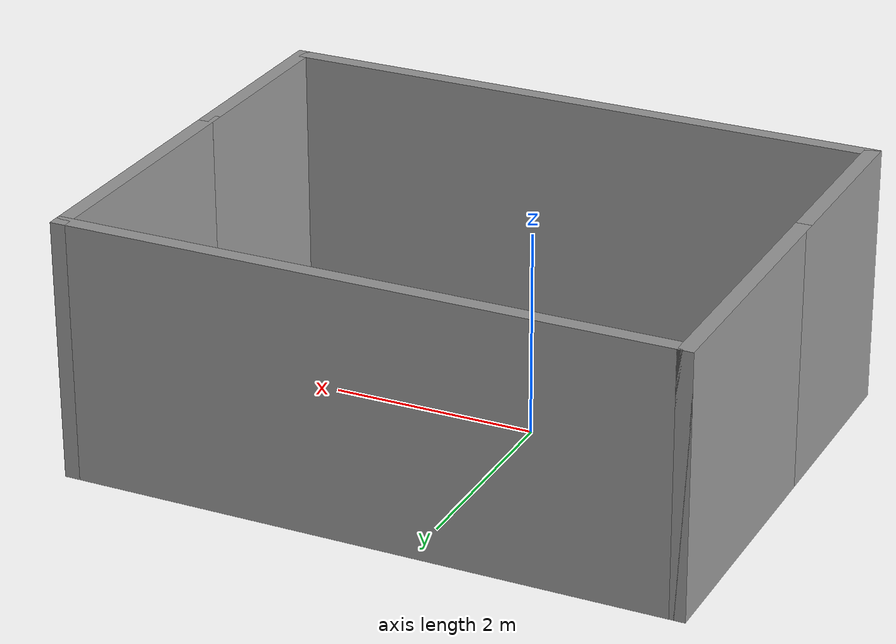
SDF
<?xml version='1.0'?>
<sdf version='1.7'>
  <model name='cube_test'>
    <pose>0.441066 0.255392 0 0 -0 0</pose>
    <link name='Wall_10'>
      <collision name='Wall_10_Collision'>
        <geometry>
          <box>
            <size>6 0.15 2.5</size>
          </box>
        </geometry>
        <pose>0 0 1.25 0 -0 0</pose>
      </collision>
      <visual name='Wall_10_Visual'>
        <pose>0 0 1.25 0 -0 0</pose>
        <geometry>
          <box>
            <size>6 0.15 2.5</size>
          </box>
        </geometry>
        <material>
          <script>
            <uri>file://media/materials/scripts/gazebo.material</uri>
            <name>Gazebo/Grey</name>
          </script>
          <ambient>1 1 1 1</ambient>
        </material>
        <meta>
          <layer>0</layer>
        </meta>
      </visual>
      <pose>0 2.225 0 0 -0 0</pose>
    </link>
    <link name='Wall_3'>
      <collision name='Wall_3_Collision'>
        <geometry>
          <box>
            <size>2 0.15 2.5</size>
          </box>
        </geometry>
        <pose>0 0 1.25 0 -0 0</pose>
      </collision>
      <visual name='Wall_3_Visual'>
        <pose>0 0 1.25 0 -0 0</pose>
        <geometry>
          <box>
            <size>2 0.15 2.5</size>
          </box>
        </geometry>
        <material>
          <script>
            <uri>file://media/materials/scripts/gazebo.material</uri>
            <name>Gazebo/Grey</name>
          </script>
          <ambient>1 1 1 1</ambient>
        </material>
        <meta>
          <layer>0</layer>
        </meta>
      </visual>
      <pose>-2.925 -1.3 0 0 -0 -1.5708</pose>
    </link>
    <link name='Wall_4'>
      <collision name='Wall_4_Collision'>
        <geometry>
          <box>
            <size>6 0.15 2.5</size>
          </box>
        </geometry>
        <pose>0 0 1.25 0 -0 0</pose>
      </collision>
      <visual name='Wall_4_Visual'>
        <pose>0 0 1.25 0 -0 0</pose>
        <geometry>
          <box>
            <size>6 0.15 2.5</size>
          </box>
        </geometry>
        <material>
          <script>
            <uri>file://media/materials/scripts/gazebo.material</uri>
            <name>Gazebo/Grey</name>
          </script>
          <ambient>1 1 1 1</ambient>
        </material>
        <meta>
          <layer>0</layer>
        </meta>
      </visual>
      <pose>0 -2.225 0 0 -0 0</pose>
    </link>
    <link name='Wall_5'>
      <collision name='Wall_5_Collision'>
        <geometry>
          <box>
            <size>2 0.15 2.5</size>
          </box>
        </geometry>
        <pose>0 0 1.25 0 -0 0</pose>
      </collision>
      <visual name='Wall_5_Visual'>
        <pose>0 0 1.25 0 -0 0</pose>
        <geometry>
          <box>
            <size>2 0.15 2.5</size>
          </box>
        </geometry>
        <material>
          <script>
            <uri>file://media/materials/scripts/gazebo.material</uri>
            <name>Gazebo/Grey</name>
          </script>
          <ambient>1 1 1 1</ambient>
        </material>
        <meta>
          <layer>0</layer>
        </meta>
      </visual>
      <pose>2.925 -1.3 0 0 -0 1.5708</pose>
    </link>
    <link name='Wall_6'>
      <collision name='Wall_6_Collision'>
        <geometry>
          <box>
            <size>2.75 0.15 2.5</size>
          </box>
        </geometry>
        <pose>0 0 1.25 0 -0 0</pose>
      </collision>
      <visual name='Wall_6_Visual'>
        <pose>0 0 1.25 0 -0 0</pose>
        <geometry>
          <box>
            <size>2.75 0.15 2.5</size>
          </box>
        </geometry>
        <material>
          <script>
            <uri>file://media/materials/scripts/gazebo.material</uri>
            <name>Gazebo/Grey</name>
          </script>
          <ambient>1 1 1 1</ambient>
        </material>
        <meta>
          <layer>0</layer>
        </meta>
      </visual>
      <pose>2.925 0.925 0 0 -0 1.5708</pose>
    </link>
    <link name='Wall_9'>
      <collision name='Wall_9_Collision'>
        <geometry>
          <box>
            <size>2.75 0.15 2.5</size>
          </box>
        </geometry>
        <pose>0 0 1.25 0 -0 0</pose>
      </collision>
      <visual name='Wall_9_Visual'>
        <pose>0 0 1.25 0 -0 0</pose>
        <geometry>
          <box>
            <size>2.75 0.15 2.5</size>
          </box>
        </geometry>
        <material>
          <script>
            <uri>file://media/materials/scripts/gazebo.material</uri>
            <name>Gazebo/Grey</name>
          </script>
          <ambient>1 1 1 1</ambient>
        </material>
        <meta>
          <layer>0</layer>
        </meta>
      </visual>
      <pose>-2.925 0.925 0 0 -0 1.5708</pose>
    </link>
    <static>1</static>
  </model>
</sdf>
